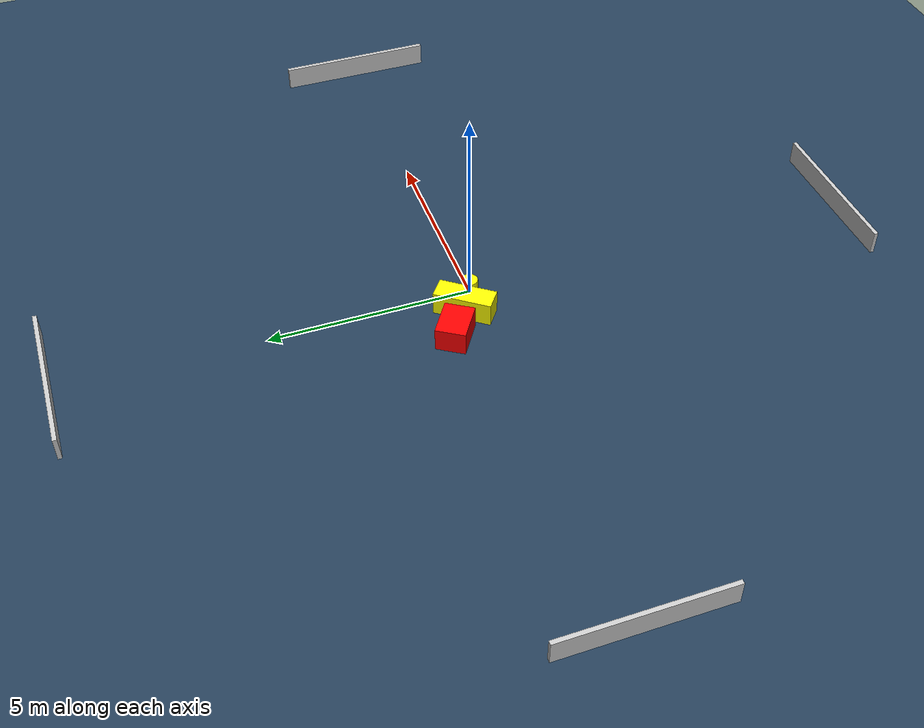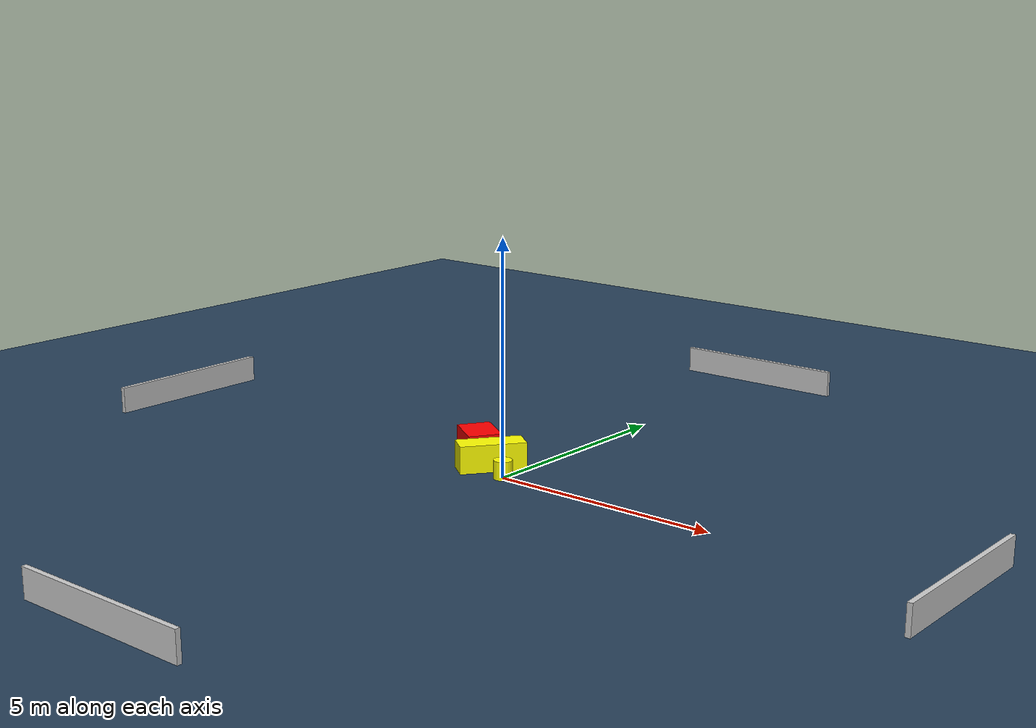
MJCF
<?xml version="1.0" ?>
<mujoco model="generated_environment">
  <option timestep="0.01" integrator="RK4" cone="elliptic"/>
  <default>
    <geom density="1"/>
  </default>
  <asset>
    <texture builtin="gradient" height="3072" name="skybox" rgb1="0.3 0.5 0.7" rgb2="0 0 0" type="skybox" width="512"/>
    <texture builtin="checker" height="300" name="groundplane" rgb1="0.2 0.3 0.4" rgb2="0.1 0.2 0.3" type="2d" width="300"/>
    <material name="groundplane" reflectance="0.2" texrepeat="5 5" texture="groundplane"/>
  </asset>
  <worldbody>
    <light dir="0 0 -1" directional="true" pos="0 0 1.5"/>
    <geom condim="3" friction="0.5 0.005 0.001" material="groundplane" name="floor" pos="0 0 0" size="0 0 0.05" type="plane"/>
    <body name="walls">
      <geom name="wall_1" condim="4" pos="-10.0 0.0 0.3" rgba="0.800000011920929 0.800000011920929 0.800000011920929 1.0" size="0.05 2.0 0.3" type="box"/>
      <geom name="wall_2" condim="4" pos="10.0 0.0 0.3" rgba="0.800000011920929 0.800000011920929 0.800000011920929 1.0" size="0.05 2.0 0.3" type="box"/>
      <geom name="wall_3" condim="4" pos="0.0 -10.0 0.3" rgba="0.800000011920929 0.800000011920929 0.800000011920929 1.0" size="2.0 0.05 0.3" type="box"/>
      <geom name="wall_4" condim="4" pos="0.0 10.0 0.3" rgba="0.800000011920929 0.800000011920929 0.800000011920929 1.0" size="2.0 0.05 0.3" type="box"/>
    </body>
    <body name="robot">
      <joint name="joint_x" type="slide" pos="0 0 0" axis="1 0 0"/>
      <joint name="joint_y" type="slide" pos="0 0 0" axis="0 1 0"/>
      <geom name="robot" type="cylinder" pos="0.0 0.0 0.2" size="0.2 0.2 0.0" mass="5.0" friction="1.0 0.005 0.0001" condim="4" rgba="1.0 1.0 0.0 1.0"/>
    </body>
    <body name="obstacle_1_movable">
      <geom name="obstacle_1_movable" condim="4" pos="-0.6107938420469988 0.33393082819293524 0.3" euler="0 0 53.00351558278146" friction="0.0 0.005 0.001" rgba="1.0 1.0 0.0 1.0" size="0.713697407693975 0.2699732178277179 0.3" type="box" mass="0.1"/>
      <joint type="free"/>
    </body>
    <body name="obstacle_2_static">
      <geom name="obstacle_2_static" condim="4" pos="-1.3659364776393284 0.84204240983674 0.3" euler="0 0 237.1256595649429" friction="0.0 0.005 0.001" rgba="1.0 0.0 0.0 1.0" size="0.3680624228494761 0.4748386967777157 0.3" type="box"/>
    </body>
  </worldbody>
  <actuator>
    <motor name="actuator_x" joint="joint_x" gear="1" ctrlrange="-1 1"/>
    <motor name="actuator_y" joint="joint_y" gear="1" ctrlrange="-1 1"/>
  </actuator>
</mujoco>
